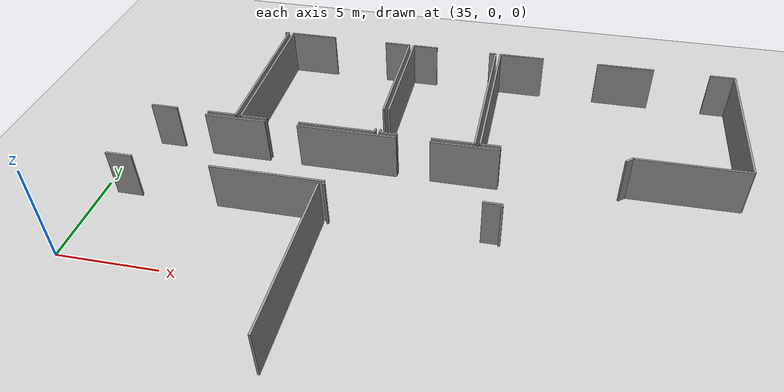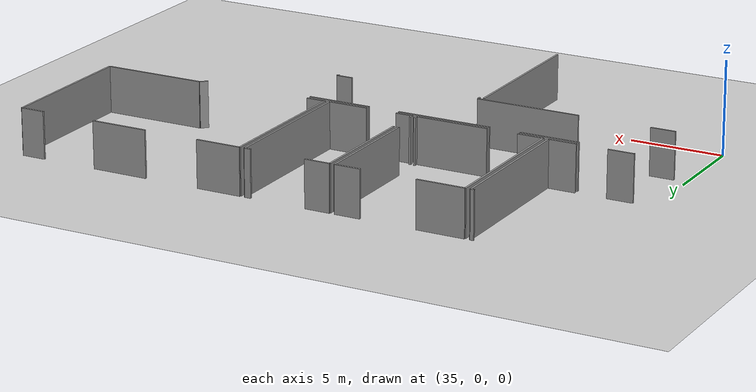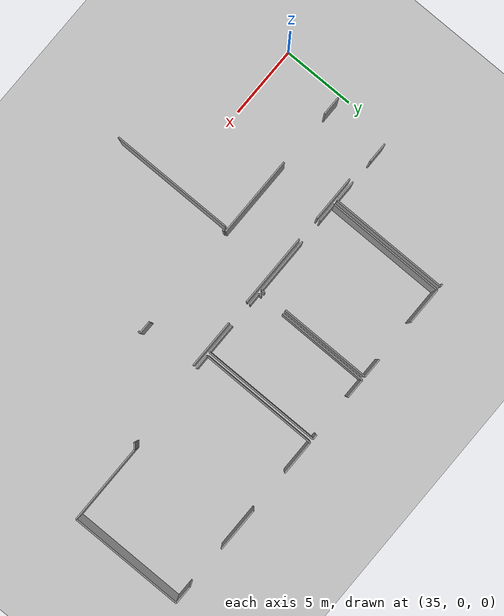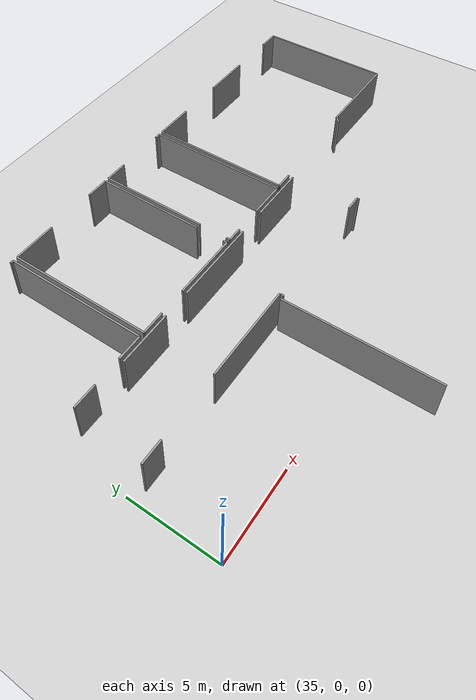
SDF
<sdf version="1.6">
 <world name="default">
  <model name="ground_plane">
   <static>1</static>
   <link name="link">
    <collision name="collision">
     <geometry><plane><normal>0 0 1</normal><size>100 100</size></plane></geometry>
     <surface><friction><ode><mu>100</mu><mu2>50</mu2></ode></friction></surface>
    </collision>
    <visual name="visual">
     <cast_shadows>0</cast_shadows>
     <geometry><plane><normal>0 0 1</normal><size>100 100</size></plane></geometry>
     <material>
      <script><uri>file://media/materials/scripts/gazebo.material</uri><name>Gazebo/Grey</name></script>
     </material>
    </visual>
   </link>
  </model>
  <model name="50041171">
   <static>1</static>
   <link name="Wall_181">
    <collision name="Wall_181_Collision">
     <geometry><box><size>3.16096149086 0.1 2.5</size></box></geometry>
     <pose>1.58048074543 0 1.25 0 0 0</pose>
    </collision>
    <visual name="Wall_181_Visual">
     <pose>1.58048074543 0 1.25 0 0 0</pose>
     <geometry><box><size>3.16096149086 0.1 2.5</size></box></geometry>
     <material>
      <script><uri>file://media/materials/scripts/gazebo.material</uri><name>Gazebo/Grey</name></script>
      <ambient>1 1 1 1</ambient>
     </material>
    </visual>
    <pose>104.750582366 -8.49295765708 0 0 0 0.0</pose>
   </link>
   <link name="Wall_182">
    <collision name="Wall_182_Collision">
     <geometry><box><size>5.03595752379 0.1 2.5</size></box></geometry>
     <pose>2.51797876189 0 1.25 0 0 0</pose>
    </collision>
    <visual name="Wall_182_Visual">
     <pose>2.51797876189 0 1.25 0 0 0</pose>
     <geometry><box><size>5.03595752379 0.1 2.5</size></box></geometry>
     <material>
      <script><uri>file://media/materials/scripts/gazebo.material</uri><name>Gazebo/Grey</name></script>
      <ambient>1 1 1 1</ambient>
     </material>
    </visual>
    <pose>109.574539661 -8.49295765708 0 0 0 0.0</pose>
   </link>
   <link name="Wall_183">
    <collision name="Wall_183_Collision">
     <geometry><box><size>3.41612344253 0.1 2.5</size></box></geometry>
     <pose>1.70806172126 0 1.25 0 0 0</pose>
    </collision>
    <visual name="Wall_183_Visual">
     <pose>1.70806172126 0 1.25 0 0 0</pose>
     <geometry><box><size>3.41612344253 0.1 2.5</size></box></geometry>
     <material>
      <script><uri>file://media/materials/scripts/gazebo.material</uri><name>Gazebo/Grey</name></script>
      <ambient>1 1 1 1</ambient>
     </material>
    </visual>
    <pose>116.282379227 -8.49295765708 0 0 0 0.0</pose>
   </link>
   <link name="Wall_184">
    <collision name="Wall_184_Collision">
     <geometry><box><size>0.145226503837 0.1 2.5</size></box></geometry>
     <pose>0.0726132519185 0 1.25 0 0 0</pose>
    </collision>
    <visual name="Wall_184_Visual">
     <pose>0.0726132519185 0 1.25 0 0 0</pose>
     <geometry><box><size>0.145226503837 0.1 2.5</size></box></geometry>
     <material>
      <script><uri>file://media/materials/scripts/gazebo.material</uri><name>Gazebo/Grey</name></script>
      <ambient>1 1 1 1</ambient>
     </material>
    </visual>
    <pose>120.244371521 -12.4011247437 0 0 0 1.57079632679</pose>
   </link>
   <link name="Wall_185">
    <collision name="Wall_185_Collision">
     <geometry><box><size>0.886084787397 0.1 2.5</size></box></geometry>
     <pose>0.443042393698 0 1.25 0 0 0</pose>
    </collision>
    <visual name="Wall_185_Visual">
     <pose>0.443042393698 0 1.25 0 0 0</pose>
     <geometry><box><size>0.886084787397 0.1 2.5</size></box></geometry>
     <material>
      <script><uri>file://media/materials/scripts/gazebo.material</uri><name>Gazebo/Grey</name></script>
      <ambient>1 1 1 1</ambient>
     </material>
    </visual>
    <pose>120.244371521 -12.2558982399 0 0 0 3.14159265359</pose>
   </link>
   <link name="Wall_186">
    <collision name="Wall_186_Collision">
     <geometry><box><size>5.59337848388 0.1 2.5</size></box></geometry>
     <pose>2.79668924194 0 1.25 0 0 0</pose>
    </collision>
    <visual name="Wall_186_Visual">
     <pose>2.79668924194 0 1.25 0 0 0</pose>
     <geometry><box><size>5.59337848388 0.1 2.5</size></box></geometry>
     <material>
      <script><uri>file://media/materials/scripts/gazebo.material</uri><name>Gazebo/Grey</name></script>
      <ambient>1 1 1 1</ambient>
     </material>
    </visual>
    <pose>112.141392727 -12.2558982399 0 0 0 3.14159265359</pose>
   </link>
   <link name="Wall_187">
    <collision name="Wall_187_Collision">
     <geometry><box><size>1.32468406253 0.1 2.5</size></box></geometry>
     <pose>0.662342031267 0 1.25 0 0 0</pose>
    </collision>
    <visual name="Wall_187_Visual">
     <pose>0.662342031267 0 1.25 0 0 0</pose>
     <geometry><box><size>1.32468406253 0.1 2.5</size></box></geometry>
     <material>
      <script><uri>file://media/materials/scripts/gazebo.material</uri><name>Gazebo/Grey</name></script>
      <ambient>1 1 1 1</ambient>
     </material>
    </visual>
    <pose>102.660412448 -12.2558982399 0 0 0 3.14159265359</pose>
   </link>
   <link name="Wall_223">
    <collision name="Wall_223_Collision">
     <geometry><box><size>1.4939034066 0.1 2.5</size></box></geometry>
     <pose>0.746951703301 0 1.25 0 0 0</pose>
    </collision>
    <visual name="Wall_223_Visual">
     <pose>0.746951703301 0 1.25 0 0 0</pose>
     <geometry><box><size>1.4939034066 0.1 2.5</size></box></geometry>
     <material>
      <script><uri>file://media/materials/scripts/gazebo.material</uri><name>Gazebo/Grey</name></script>
      <ambient>1 1 1 1</ambient>
     </material>
    </visual>
    <pose>106.259973214 -8.22852862955 0 0 0 3.14159265359</pose>
   </link>
   <link name="Wall_224">
    <collision name="Wall_224_Collision">
     <geometry><box><size>1.39361587336 0.1 2.5</size></box></geometry>
     <pose>0.696807936679 0 1.25 0 0 0</pose>
    </collision>
    <visual name="Wall_224_Visual">
     <pose>0.696807936679 0 1.25 0 0 0</pose>
     <geometry><box><size>1.39361587336 0.1 2.5</size></box></geometry>
     <material>
      <script><uri>file://media/materials/scripts/gazebo.material</uri><name>Gazebo/Grey</name></script>
      <ambient>1 1 1 1</ambient>
     </material>
    </visual>
    <pose>103.107771014 -8.22852862955 0 0 0 3.14159265359</pose>
   </link>
   <link name="Wall_227">
    <collision name="Wall_227_Collision">
     <geometry><box><size>0.182929538487 0.1 2.5</size></box></geometry>
     <pose>0.0914647692435 0 1.25 0 0 0</pose>
    </collision>
    <visual name="Wall_227_Visual">
     <pose>0.0914647692435 0 1.25 0 0 0</pose>
     <geometry><box><size>0.182929538487 0.1 2.5</size></box></geometry>
     <material>
      <script><uri>file://media/materials/scripts/gazebo.material</uri><name>Gazebo/Grey</name></script>
      <ambient>1 1 1 1</ambient>
     </material>
    </visual>
    <pose>106.07894787 -0.0125676782167 0 0 0 0.0</pose>
   </link>
   <link name="Wall_228">
    <collision name="Wall_228_Collision">
     <geometry><box><size>8.215961172 0.1 2.5</size></box></geometry>
     <pose>4.107980586 0 1.25 0 0 0</pose>
    </collision>
    <visual name="Wall_228_Visual">
     <pose>4.107980586 0 1.25 0 0 0</pose>
     <geometry><box><size>8.215961172 0.1 2.5</size></box></geometry>
     <material>
      <script><uri>file://media/materials/scripts/gazebo.material</uri><name>Gazebo/Grey</name></script>
      <ambient>1 1 1 1</ambient>
     </material>
    </visual>
    <pose>106.261877408 -0.0125676782167 0 0 0 -1.57102809441</pose>
   </link>
   <link name="Wall_229">
    <collision name="Wall_229_Collision">
     <geometry><box><size>3.89610719341 0.1 2.5</size></box></geometry>
     <pose>1.9480535967 0 1.25 0 0 0</pose>
    </collision>
    <visual name="Wall_229_Visual">
     <pose>1.9480535967 0 1.25 0 0 0</pose>
     <geometry><box><size>3.89610719341 0.1 2.5</size></box></geometry>
     <material>
      <script><uri>file://media/materials/scripts/gazebo.material</uri><name>Gazebo/Grey</name></script>
      <ambient>1 1 1 1</ambient>
     </material>
    </visual>
    <pose>113.478136683 -8.24782445873 0 0 0 3.14159265359</pose>
   </link>
   <link name="Wall_230">
    <collision name="Wall_230_Collision">
     <geometry><box><size>1.37254279675 0.1 2.5</size></box></geometry>
     <pose>0.686271398376 0 1.25 0 0 0</pose>
    </collision>
    <visual name="Wall_230_Visual">
     <pose>0.686271398376 0 1.25 0 0 0</pose>
     <geometry><box><size>1.37254279675 0.1 2.5</size></box></geometry>
     <material>
      <script><uri>file://media/materials/scripts/gazebo.material</uri><name>Gazebo/Grey</name></script>
      <ambient>1 1 1 1</ambient>
     </material>
    </visual>
    <pose>107.92055704 -8.24782445873 0 0 0 3.14159265359</pose>
   </link>
   <link name="Wall_231">
    <collision name="Wall_231_Collision">
     <geometry><box><size>8.23652624296 0.1 2.5</size></box></geometry>
     <pose>4.11826312148 0 1.25 0 0 0</pose>
    </collision>
    <visual name="Wall_231_Visual">
     <pose>4.11826312148 0 1.25 0 0 0</pose>
     <geometry><box><size>8.23652624296 0.1 2.5</size></box></geometry>
     <material>
      <script><uri>file://media/materials/scripts/gazebo.material</uri><name>Gazebo/Grey</name></script>
      <ambient>1 1 1 1</ambient>
     </material>
    </visual>
    <pose>106.548014243 -8.24782445873 0 0 0 1.57079632679</pose>
   </link>
   <link name="Wall_232">
    <collision name="Wall_232_Collision">
     <geometry><box><size>2.55504706532 0.1 2.5</size></box></geometry>
     <pose>1.27752353266 0 1.25 0 0 0</pose>
    </collision>
    <visual name="Wall_232_Visual">
     <pose>1.27752353266 0 1.25 0 0 0</pose>
     <geometry><box><size>2.55504706532 0.1 2.5</size></box></geometry>
     <material>
      <script><uri>file://media/materials/scripts/gazebo.material</uri><name>Gazebo/Grey</name></script>
      <ambient>1 1 1 1</ambient>
     </material>
    </visual>
    <pose>106.548014243 -0.0112982157705 0 0 0 0.0</pose>
   </link>
   <link name="Wall_233">
    <collision name="Wall_233_Collision">
     <geometry><box><size>1.37228890426 0.1 2.5</size></box></geometry>
     <pose>0.686144452132 0 1.25 0 0 0</pose>
    </collision>
    <visual name="Wall_233_Visual">
     <pose>0.686144452132 0 1.25 0 0 0</pose>
     <geometry><box><size>1.37228890426 0.1 2.5</size></box></geometry>
     <material>
      <script><uri>file://media/materials/scripts/gazebo.material</uri><name>Gazebo/Grey</name></script>
      <ambient>1 1 1 1</ambient>
     </material>
    </visual>
    <pose>112.093153154 -0.0112982157705 0 0 0 0.0</pose>
   </link>
   <link name="Wall_234">
    <collision name="Wall_234_Collision">
     <geometry><box><size>6.33588706862 0.1 2.5</size></box></geometry>
     <pose>3.16794353431 0 1.25 0 0 0</pose>
    </collision>
    <visual name="Wall_234_Visual">
     <pose>3.16794353431 0 1.25 0 0 0</pose>
     <geometry><box><size>6.33588706862 0.1 2.5</size></box></geometry>
     <material>
      <script><uri>file://media/materials/scripts/gazebo.material</uri><name>Gazebo/Grey</name></script>
      <ambient>1 1 1 1</ambient>
     </material>
    </visual>
    <pose>113.465442059 -0.0112982157705 0 0 0 -1.57079632679</pose>
   </link>
   <link name="Wall_235">
    <collision name="Wall_235_Collision">
     <geometry><box><size>0.245588460672 0.1 2.5</size></box></geometry>
     <pose>0.122794230336 0 1.25 0 0 0</pose>
    </collision>
    <visual name="Wall_235_Visual">
     <pose>0.122794230336 0 1.25 0 0 0</pose>
     <geometry><box><size>0.245588460672 0.1 2.5</size></box></geometry>
     <material>
      <script><uri>file://media/materials/scripts/gazebo.material</uri><name>Gazebo/Grey</name></script>
      <ambient>1 1 1 1</ambient>
     </material>
    </visual>
    <pose>113.465442059 -8.00256431414 0 0 0 -1.51908264119</pose>
   </link>
   <link name="Wall_236">
    <collision name="Wall_236_Collision">
     <geometry><box><size>2.13396637194 0.1 2.5</size></box></geometry>
     <pose>1.06698318597 0 1.25 0 0 0</pose>
    </collision>
    <visual name="Wall_236_Visual">
     <pose>1.06698318597 0 1.25 0 0 0</pose>
     <geometry><box><size>2.13396637194 0.1 2.5</size></box></geometry>
     <material>
      <script><uri>file://media/materials/scripts/gazebo.material</uri><name>Gazebo/Grey</name></script>
      <ambient>1 1 1 1</ambient>
     </material>
    </visual>
    <pose>118.431579148 -8.24782445873 0 0 0 3.14159265359</pose>
   </link>
   <link name="Wall_237">
    <collision name="Wall_237_Collision">
     <geometry><box><size>0.886084787397 0.1 2.5</size></box></geometry>
     <pose>0.443042393698 0 1.25 0 0 0</pose>
    </collision>
    <visual name="Wall_237_Visual">
     <pose>0.443042393698 0 1.25 0 0 0</pose>
     <geometry><box><size>0.886084787397 0.1 2.5</size></box></geometry>
     <material>
      <script><uri>file://media/materials/scripts/gazebo.material</uri><name>Gazebo/Grey</name></script>
      <ambient>1 1 1 1</ambient>
     </material>
    </visual>
    <pose>114.619383422 -8.24782445873 0 0 0 3.14159265359</pose>
   </link>
   <link name="Wall_238">
    <collision name="Wall_238_Collision">
     <geometry><box><size>0.230661326461 0.1 2.5</size></box></geometry>
     <pose>0.115330663231 0 1.25 0 0 0</pose>
    </collision>
    <visual name="Wall_238_Visual">
     <pose>0.115330663231 0 1.25 0 0 0</pose>
     <geometry><box><size>0.230661326461 0.1 2.5</size></box></geometry>
     <material>
      <script><uri>file://media/materials/scripts/gazebo.material</uri><name>Gazebo/Grey</name></script>
      <ambient>1 1 1 1</ambient>
     </material>
    </visual>
    <pose>113.733298635 -8.24782445873 0 0 0 1.57079632679</pose>
   </link>
   <link name="Wall_239">
    <collision name="Wall_239_Collision">
     <geometry><box><size>6.33131700381 0.1 2.5</size></box></geometry>
     <pose>3.16565850191 0 1.25 0 0 0</pose>
    </collision>
    <visual name="Wall_239_Visual">
     <pose>3.16565850191 0 1.25 0 0 0</pose>
     <geometry><box><size>6.33131700381 0.1 2.5</size></box></geometry>
     <material>
      <script><uri>file://media/materials/scripts/gazebo.material</uri><name>Gazebo/Grey</name></script>
      <ambient>1 1 1 1</ambient>
     </material>
    </visual>
    <pose>113.733298635 -6.3375373698 0 0 0 1.57079632679</pose>
   </link>
   <link name="Wall_240">
    <collision name="Wall_240_Collision">
     <geometry><box><size>1.35832481736 0.1 2.5</size></box></geometry>
     <pose>0.679162408678 0 1.25 0 0 0</pose>
    </collision>
    <visual name="Wall_240_Visual">
     <pose>0.679162408678 0 1.25 0 0 0</pose>
     <geometry><box><size>1.35832481736 0.1 2.5</size></box></geometry>
     <material>
      <script><uri>file://media/materials/scripts/gazebo.material</uri><name>Gazebo/Grey</name></script>
      <ambient>1 1 1 1</ambient>
     </material>
    </visual>
    <pose>113.733298635 -0.00622036598602 0 0 0 0.0</pose>
   </link>
   <link name="Wall_241">
    <collision name="Wall_241_Collision">
     <geometry><box><size>0.333868623331 0.1 2.5</size></box></geometry>
     <pose>0.166934311666 0 1.25 0 0 0</pose>
    </collision>
    <visual name="Wall_241_Visual">
     <pose>0.166934311666 0 1.25 0 0 0</pose>
     <geometry><box><size>0.333868623331 0.1 2.5</size></box></geometry>
     <material>
      <script><uri>file://media/materials/scripts/gazebo.material</uri><name>Gazebo/Grey</name></script>
      <ambient>1 1 1 1</ambient>
     </material>
    </visual>
    <pose>118.083746438 -0.00622036598602 0 0 0 0.0</pose>
   </link>
   <link name="Wall_242">
    <collision name="Wall_242_Collision">
     <geometry><box><size>8.2416159227 0.1 2.5</size></box></geometry>
     <pose>4.12080796135 0 1.25 0 0 0</pose>
    </collision>
    <visual name="Wall_242_Visual">
     <pose>4.12080796135 0 1.25 0 0 0</pose>
     <geometry><box><size>8.2416159227 0.1 2.5</size></box></geometry>
     <material>
      <script><uri>file://media/materials/scripts/gazebo.material</uri><name>Gazebo/Grey</name></script>
      <ambient>1 1 1 1</ambient>
     </material>
    </visual>
    <pose>118.417615061 -0.00622036598602 0 0 0 -1.56910198751</pose>
   </link>
   <link name="Wall_243">
    <collision name="Wall_243_Collision">
     <geometry><box><size>5.49169454195 0.1 2.5</size></box></geometry>
     <pose>2.74584727097 0 1.25 0 0 0</pose>
    </collision>
    <visual name="Wall_243_Visual">
     <pose>2.74584727097 0 1.25 0 0 0</pose>
     <geometry><box><size>5.49169454195 0.1 2.5</size></box></geometry>
     <material>
      <script><uri>file://media/materials/scripts/gazebo.material</uri><name>Gazebo/Grey</name></script>
      <ambient>1 1 1 1</ambient>
     </material>
    </visual>
    <pose>131.383904486 -7.92893549227 0 0 0 3.14159265359</pose>
   </link>
   <link name="Wall_244">
    <collision name="Wall_244_Collision">
     <geometry><box><size>0.439862344428 0.1 2.5</size></box></geometry>
     <pose>0.219931172214 0 1.25 0 0 0</pose>
    </collision>
    <visual name="Wall_244_Visual">
     <pose>0.219931172214 0 1.25 0 0 0</pose>
     <geometry><box><size>0.439862344428 0.1 2.5</size></box></geometry>
     <material>
      <script><uri>file://media/materials/scripts/gazebo.material</uri><name>Gazebo/Grey</name></script>
      <ambient>1 1 1 1</ambient>
     </material>
    </visual>
    <pose>125.892209944 -7.92893549227 0 0 0 -2.40641785136</pose>
   </link>
   <link name="Wall_245">
    <collision name="Wall_245_Collision">
     <geometry><box><size>1.01810888179 0.1 2.5</size></box></geometry>
     <pose>0.509054440897 0 1.25 0 0 0</pose>
    </collision>
    <visual name="Wall_245_Visual">
     <pose>0.509054440897 0 1.25 0 0 0</pose>
     <geometry><box><size>1.01810888179 0.1 2.5</size></box></geometry>
     <material>
      <script><uri>file://media/materials/scripts/gazebo.material</uri><name>Gazebo/Grey</name></script>
      <ambient>1 1 1 1</ambient>
     </material>
    </visual>
    <pose>119.708658369 -8.22395856475 0 0 0 3.14159265359</pose>
   </link>
   <link name="Wall_246">
    <collision name="Wall_246_Collision">
     <geometry><box><size>8.22395856475 0.1 2.5</size></box></geometry>
     <pose>4.11197928237 0 1.25 0 0 0</pose>
    </collision>
    <visual name="Wall_246_Visual">
     <pose>4.11197928237 0 1.25 0 0 0</pose>
     <geometry><box><size>8.22395856475 0.1 2.5</size></box></geometry>
     <material>
      <script><uri>file://media/materials/scripts/gazebo.material</uri><name>Gazebo/Grey</name></script>
      <ambient>1 1 1 1</ambient>
     </material>
    </visual>
    <pose>118.690549487 -8.22395856475 0 0 0 1.57079632679</pose>
   </link>
   <link name="Wall_247">
    <collision name="Wall_247_Collision">
     <geometry><box><size>2.41578703498 0.1 2.5</size></box></geometry>
     <pose>1.20789351749 0 1.25 0 0 0</pose>
    </collision>
    <visual name="Wall_247_Visual">
     <pose>1.20789351749 0 1.25 0 0 0</pose>
     <geometry><box><size>2.41578703498 0.1 2.5</size></box></geometry>
     <material>
      <script><uri>file://media/materials/scripts/gazebo.material</uri><name>Gazebo/Grey</name></script>
      <ambient>1 1 1 1</ambient>
     </material>
    </visual>
    <pose>118.690549487 -0.0 0 0 0 0.0</pose>
   </link>
   <link name="Wall_248">
    <collision name="Wall_248_Collision">
     <geometry><box><size>3.03528470869 0.1 2.5</size></box></geometry>
     <pose>1.51764235435 0 1.25 0 0 0</pose>
    </collision>
    <visual name="Wall_248_Visual">
     <pose>1.51764235435 0 1.25 0 0 0</pose>
     <geometry><box><size>3.03528470869 0.1 2.5</size></box></geometry>
     <material>
      <script><uri>file://media/materials/scripts/gazebo.material</uri><name>Gazebo/Grey</name></script>
      <ambient>1 1 1 1</ambient>
     </material>
    </visual>
    <pose>124.066722946 -0.0 0 0 0 0.0</pose>
   </link>
   <link name="Wall_249">
    <collision name="Wall_249_Collision">
     <geometry><box><size>1.28088760814 0.1 2.5</size></box></geometry>
     <pose>0.640443804071 0 1.25 0 0 0</pose>
    </collision>
    <visual name="Wall_249_Visual">
     <pose>0.640443804071 0 1.25 0 0 0</pose>
     <geometry><box><size>1.28088760814 0.1 2.5</size></box></geometry>
     <material>
      <script><uri>file://media/materials/scripts/gazebo.material</uri><name>Gazebo/Grey</name></script>
      <ambient>1 1 1 1</ambient>
     </material>
    </visual>
    <pose>130.062394079 -0.0 0 0 0 0.0</pose>
   </link>
   <link name="Wall_250">
    <collision name="Wall_250_Collision">
     <geometry><box><size>7.92903955421 0.1 2.5</size></box></geometry>
     <pose>3.96451977711 0 1.25 0 0 0</pose>
    </collision>
    <visual name="Wall_250_Visual">
     <pose>3.96451977711 0 1.25 0 0 0</pose>
     <geometry><box><size>7.92903955421 0.1 2.5</size></box></geometry>
     <material>
      <script><uri>file://media/materials/scripts/gazebo.material</uri><name>Gazebo/Grey</name></script>
      <ambient>1 1 1 1</ambient>
     </material>
    </visual>
    <pose>131.343281687 -0.0 0 0 0 -1.5656730107</pose>
   </link>
   <link name="Wall_294">
    <collision name="Wall_294_Collision">
     <geometry><box><size>8.58500307019 0.1 2.5</size></box></geometry>
     <pose>4.29250153509 0 1.25 0 0 0</pose>
    </collision>
    <visual name="Wall_294_Visual">
     <pose>4.29250153509 0 1.25 0 0 0</pose>
     <geometry><box><size>8.58500307019 0.1 2.5</size></box></geometry>
     <material>
      <script><uri>file://media/materials/scripts/gazebo.material</uri><name>Gazebo/Grey</name></script>
      <ambient>1 1 1 1</ambient>
     </material>
    </visual>
    <pose>111.897655938 -12.4591391775 0 0 0 -1.56931762854</pose>
   </link>
   <link name="Wall_303">
    <collision name="Wall_303_Collision">
     <geometry><box><size>0.152335493535 0.1 2.5</size></box></geometry>
     <pose>0.0761677467676 0 1.25 0 0 0</pose>
    </collision>
    <visual name="Wall_303_Visual">
     <pose>0.0761677467676 0 1.25 0 0 0</pose>
     <geometry><box><size>0.152335493535 0.1 2.5</size></box></geometry>
     <material>
      <script><uri>file://media/materials/scripts/gazebo.material</uri><name>Gazebo/Grey</name></script>
      <ambient>1 1 1 1</ambient>
     </material>
    </visual>
    <pose>112.138853802 -12.3339701803 0 0 0 -1.57079632679</pose>
   </link>
   <pose>-65.65 16.7602709033 0 0 0 0</pose>
  </model>
 </world>
</sdf>
